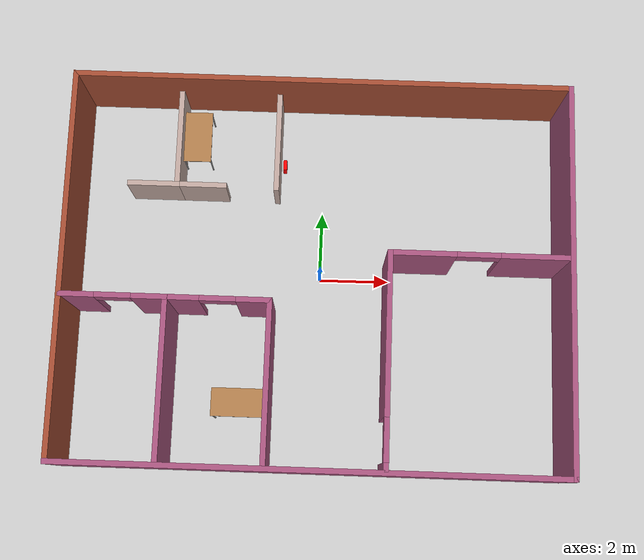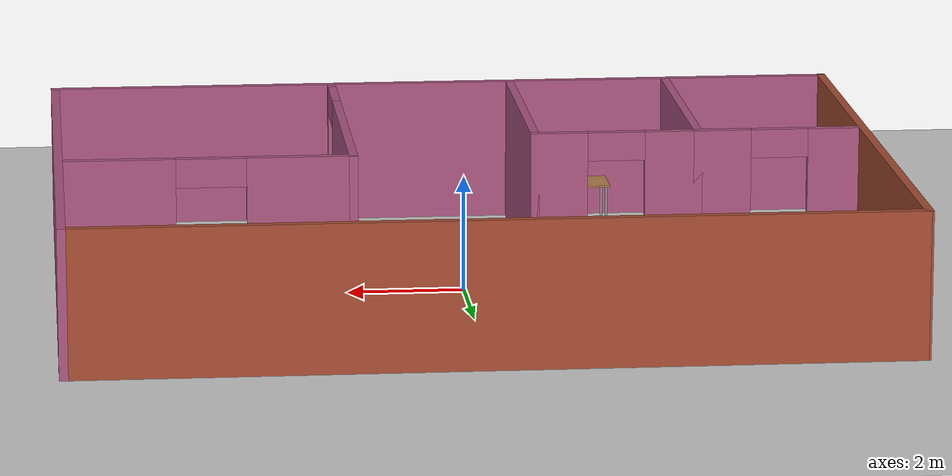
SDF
<sdf version="1.6">
 <world name="default">
  <include><uri>model://aruco_marker</uri><name>charging_dock0</name><pose>-1.15 3.4 0.0 0 -0 0</pose></include>
  <physics type="ode">
   <real_time_update_rate>1000.0</real_time_update_rate>
   <max_step_size>0.001</max_step_size>
   <real_time_factor>1</real_time_factor>
   <ode>
    <solver>
     <type>quick</type>
     <iters>150</iters>
     <precon_iters>0</precon_iters>
     <sor>1.400000</sor>
     <use_dynamic_moi_rescaling>1</use_dynamic_moi_rescaling>
    </solver>
    <constraints>
     <cfm>0.00001</cfm>
     <erp>0.2</erp>
     <contact_max_correcting_vel>2000.000000</contact_max_correcting_vel>
     <contact_surface_layer>0.01000</contact_surface_layer>
    </constraints>
   </ode>
  </physics>
  <plugin name="hello" filename="libhello.so"/>
  <light name="sun" type="directional">
   <pose>0 0 10 0 -0 0</pose>
   <diffuse>0.8 0.8 0.8 1</diffuse>
   <specular>0.2 0.2 0.2 1</specular>
   <attenuation>
    <range>1000</range>
    <constant>0.9</constant>
    <linear>0.01</linear>
    <quadratic>0.001</quadratic>
   </attenuation>
   <direction>-0.5 0.1 -0.9</direction>
  </light>
  <model name="ground_plane">
   <static>1</static>
   <link name="link">
    <collision name="collision">
     <geometry><plane><normal>0 0 1</normal><size>100 100</size></plane></geometry>
     <surface><friction><ode><mu>100</mu><mu2>50</mu2></ode></friction></surface>
    </collision>
    <visual name="visual">
     <cast_shadows>0</cast_shadows>
     <geometry><plane><normal>0 0 1</normal><size>100 100</size></plane></geometry>
     <material>
      <script><uri>file://media/materials/scripts/gazebo.material</uri><name>Gazebo/Grey</name></script>
     </material>
    </visual>
   </link>
  </model>
  <gravity>0 0 -9.8</gravity>
  <magnetic_field>6e-06 2.3e-05 -4.2e-05</magnetic_field>
  <atmosphere type="adiabatic"/>
  <scene><ambient>0.4 0.4 0.4 1</ambient><background>0.7 0.7 0.7 1</background><shadows>1</shadows></scene>
  <spherical_coordinates>
   <surface_model>EARTH_WGS84</surface_model>
   <latitude_deg>0</latitude_deg>
   <longitude_deg>0</longitude_deg>
   <elevation>0</elevation>
   <heading_deg>0</heading_deg>
  </spherical_coordinates>
  <model name="Building">
   <pose>-0.086047 -0.158335 0 0 -0 0</pose>
   <link name="Wall_12">
    <pose>-5.528 -0.925 0 0 -0 0</pose>
    <visual name="Wall_12_Visual_0">
     <pose>-1.00127 0 1.25 0 -0 0</pose>
     <geometry><box><size>0.997471 0.15 2.5</size></box></geometry>
     <material>
      <script><uri>file://media/materials/scripts/gazebo.material</uri><name>Gazebo/Grey</name></script>
      <ambient>0.666667 0.333333 0.498039 1</ambient>
     </material>
     <meta><layer>0</layer></meta>
    </visual>
    <collision name="Wall_12_Collision_0">
     <geometry><box><size>0.997471 0.15 2.5</size></box></geometry>
     <pose>-1.00127 0 1.25 0 -0 0</pose>
    </collision>
    <visual name="Wall_12_Visual_1">
     <pose>0.998735 0 1.25 0 -0 0</pose>
     <geometry><box><size>1.00253 0.15 2.5</size></box></geometry>
     <material>
      <script><uri>file://media/materials/scripts/gazebo.material</uri><name>Gazebo/Grey</name></script>
      <ambient>0.666667 0.333333 0.498039 1</ambient>
     </material>
     <meta><layer>0</layer></meta>
    </visual>
    <collision name="Wall_12_Collision_1">
     <geometry><box><size>1.00253 0.15 2.5</size></box></geometry>
     <pose>0.998735 0 1.25 0 -0 0</pose>
    </collision>
    <visual name="Wall_12_Visual_2">
     <pose>-0.002529 0 2.25 0 -0 0</pose>
     <geometry><box><size>1 0.15 0.5</size></box></geometry>
     <material>
      <script><uri>file://media/materials/scripts/gazebo.material</uri><name>Gazebo/Grey</name></script>
      <ambient>0.666667 0.333333 0.498039 1</ambient>
     </material>
     <meta><layer>0</layer></meta>
    </visual>
    <collision name="Wall_12_Collision_2">
     <geometry><box><size>1 0.15 0.5</size></box></geometry>
     <pose>-0.002529 0 2.25 0 -0 0</pose>
    </collision>
   </link>
   <link name="Wall_15">
    <collision name="Wall_15_Collision">
     <geometry><box><size>4.5 0.15 2.5</size></box></geometry>
     <pose>0 0 1.25 0 -0 0</pose>
    </collision>
    <visual name="Wall_15_Visual">
     <pose>0 0 1.25 0 -0 0</pose>
     <geometry><box><size>4.5 0.15 2.5</size></box></geometry>
     <material>
      <script><uri>file://media/materials/scripts/gazebo.material</uri><name>Gazebo/Grey</name></script>
      <ambient>0.666667 0.333333 0.498039 1</ambient>
     </material>
     <meta><layer>0</layer></meta>
    </visual>
    <pose>-4.103 -3.1 0 0 0 -1.5708</pose>
   </link>
   <link name="Wall_17">
    <pose>-2.678 -0.925 0 0 -0 0</pose>
    <visual name="Wall_17_Visual_0">
     <pose>-0.996642 0 1.25 0 -0 0</pose>
     <geometry><box><size>1.00672 0.15 2.5</size></box></geometry>
     <material>
      <script><uri>file://media/materials/scripts/gazebo.material</uri><name>Gazebo/Grey</name></script>
      <ambient>0.666667 0.333333 0.498039 1</ambient>
     </material>
     <meta><layer>0</layer></meta>
    </visual>
    <collision name="Wall_17_Collision_0">
     <geometry><box><size>1.00672 0.15 2.5</size></box></geometry>
     <pose>-0.996642 0 1.25 0 -0 0</pose>
    </collision>
    <visual name="Wall_17_Visual_1">
     <pose>1.00336 0 1.25 0 -0 0</pose>
     <geometry><box><size>0.993284 0.15 2.5</size></box></geometry>
     <material>
      <script><uri>file://media/materials/scripts/gazebo.material</uri><name>Gazebo/Grey</name></script>
      <ambient>0.666667 0.333333 0.498039 1</ambient>
     </material>
     <meta><layer>0</layer></meta>
    </visual>
    <collision name="Wall_17_Collision_1">
     <geometry><box><size>0.993284 0.15 2.5</size></box></geometry>
     <pose>1.00336 0 1.25 0 -0 0</pose>
    </collision>
    <visual name="Wall_17_Visual_2">
     <pose>0.006716 0 2.25 0 -0 0</pose>
     <geometry><box><size>1 0.15 0.5</size></box></geometry>
     <material>
      <script><uri>file://media/materials/scripts/gazebo.material</uri><name>Gazebo/Grey</name></script>
      <ambient>0.666667 0.333333 0.498039 1</ambient>
     </material>
     <meta><layer>0</layer></meta>
    </visual>
    <collision name="Wall_17_Collision_2">
     <geometry><box><size>1 0.15 0.5</size></box></geometry>
     <pose>0.006716 0 2.25 0 -0 0</pose>
    </collision>
   </link>
   <link name="Wall_19">
    <collision name="Wall_19_Collision">
     <geometry><box><size>4.5 0.15 2.5</size></box></geometry>
     <pose>0 0 1.25 0 -0 0</pose>
    </collision>
    <visual name="Wall_19_Visual">
     <pose>0 0 1.25 0 -0 0</pose>
     <geometry><box><size>4.5 0.15 2.5</size></box></geometry>
     <material>
      <script><uri>file://media/materials/scripts/gazebo.material</uri><name>Gazebo/Grey</name></script>
      <ambient>0.666667 0.333333 0.498039 1</ambient>
     </material>
     <meta><layer>0</layer></meta>
    </visual>
    <pose>-1.253 -3.1 0 0 0 -1.5708</pose>
   </link>
   <link name="Wall_21">
    <collision name="Wall_21_Collision">
     <geometry><box><size>3 0.15 1.5</size></box></geometry>
     <pose>0 0 0.75 0 -0 0</pose>
    </collision>
    <visual name="Wall_21_Visual">
     <pose>0 0 0.75 0 -0 0</pose>
     <geometry><box><size>3 0.15 1.5</size></box></geometry>
     <material>
      <script><uri>file://media/materials/scripts/gazebo.material</uri><name>Gazebo/Grey</name></script>
      <ambient>0.760784 0.662745 0.627451 1</ambient>
     </material>
     <meta><layer>0</layer></meta>
    </visual>
    <pose>-4.103 3.972 0 0 0 -1.5708</pose>
   </link>
   <link name="Wall_23">
    <collision name="Wall_23_Collision">
     <geometry><box><size>3 0.15 1.5</size></box></geometry>
     <pose>0 0 0.75 0 -0 0</pose>
    </collision>
    <visual name="Wall_23_Visual">
     <pose>0 0 0.75 0 -0 0</pose>
     <geometry><box><size>3 0.15 1.5</size></box></geometry>
     <material>
      <script><uri>file://media/materials/scripts/gazebo.material</uri><name>Gazebo/Grey</name></script>
      <ambient>0.760784 0.662745 0.627451 1</ambient>
     </material>
     <meta><layer>0</layer></meta>
    </visual>
    <pose>-1.253 3.952 0 0 0 -1.5708</pose>
   </link>
   <link name="Wall_25">
    <collision name="Wall_25_Collision">
     <geometry><box><size>1.5 0.15 1.5</size></box></geometry>
     <pose>0 0 0.75 0 -0 0</pose>
    </collision>
    <visual name="Wall_25_Visual">
     <pose>0 0 0.75 0 -0 0</pose>
     <geometry><box><size>1.5 0.15 1.5</size></box></geometry>
     <material>
      <script><uri>file://media/materials/scripts/gazebo.material</uri><name>Gazebo/Grey</name></script>
      <ambient>0.760784 0.662745 0.627451 1</ambient>
     </material>
     <meta><layer>0</layer></meta>
    </visual>
    <pose>-4.778 2.547 0 0 -0 3.14159</pose>
   </link>
   <link name="Wall_27">
    <collision name="Wall_27_Collision">
     <geometry><box><size>1.5 0.15 1.5</size></box></geometry>
     <pose>0 0 0.75 0 -0 0</pose>
    </collision>
    <visual name="Wall_27_Visual">
     <pose>0 0 0.75 0 -0 0</pose>
     <geometry><box><size>1.5 0.15 1.5</size></box></geometry>
     <material>
      <script><uri>file://media/materials/scripts/gazebo.material</uri><name>Gazebo/Grey</name></script>
      <ambient>0.760784 0.662745 0.627451 1</ambient>
     </material>
     <meta><layer>0</layer></meta>
    </visual>
    <pose>-3.428 2.547 0 0 -0 0</pose>
   </link>
   <link name="Wall_29">
    <pose>2 -2.399 0 0 -0 1.5708</pose>
    <visual name="Wall_29_Visual_0">
     <pose>-2.87898 0 1.25 0 -0 0</pose>
     <geometry><box><size>0.242034 0.15 2.5</size></box></geometry>
     <material>
      <script><uri>file://media/materials/scripts/gazebo.material</uri><name>Gazebo/Grey</name></script>
      <ambient>0.666667 0.333333 0.498039 1</ambient>
     </material>
     <meta><layer>0</layer></meta>
    </visual>
    <collision name="Wall_29_Collision_0">
     <geometry><box><size>0.242034 0.15 2.5</size></box></geometry>
     <pose>-2.87898 0 1.25 0 -0 0</pose>
    </collision>
    <visual name="Wall_29_Visual_1">
     <pose>0.721017 0 1.25 0 -0 0</pose>
     <geometry><box><size>4.55797 0.15 2.5</size></box></geometry>
     <material>
      <script><uri>file://media/materials/scripts/gazebo.material</uri><name>Gazebo/Grey</name></script>
      <ambient>0.666667 0.333333 0.498039 1</ambient>
     </material>
     <meta><layer>0</layer></meta>
    </visual>
    <collision name="Wall_29_Collision_1">
     <geometry><box><size>4.55797 0.15 2.5</size></box></geometry>
     <pose>0.721017 0 1.25 0 -0 0</pose>
    </collision>
    <visual name="Wall_29_Visual_2">
     <pose>-2.15797 0 2.25 0 -0 0</pose>
     <geometry><box><size>1.2 0.15 0.5</size></box></geometry>
     <material>
      <script><uri>file://media/materials/scripts/gazebo.material</uri><name>Gazebo/Grey</name></script>
      <ambient>0.666667 0.333333 0.498039 1</ambient>
     </material>
     <meta><layer>0</layer></meta>
    </visual>
    <collision name="Wall_29_Collision_2">
     <geometry><box><size>1.2 0.15 0.5</size></box></geometry>
     <pose>-2.15797 0 2.25 0 -0 0</pose>
    </collision>
   </link>
   <link name="Wall_3">
    <collision name="Wall_3_Collision">
     <geometry><box><size>14.15 0.15 2.5</size></box></geometry>
     <pose>0 0 1.25 0 -0 0</pose>
    </collision>
    <visual name="Wall_3_Visual">
     <pose>0 0 1.25 0 -0 0</pose>
     <geometry><box><size>14.15 0.15 2.5</size></box></geometry>
     <material>
      <script><uri>file://media/materials/scripts/gazebo.material</uri><name>Gazebo/Grey</name></script>
      <ambient>0.666667 0.333333 0.498039 1</ambient>
     </material>
     <meta><layer>0</layer></meta>
    </visual>
    <pose>0 -5.425 0 0 -0 0</pose>
   </link>
   <link name="Wall_31">
    <pose>4.425 0.526 0 0 -0 0</pose>
    <visual name="Wall_31_Visual_0">
     <pose>-1.55299 0 1.25 0 -0 0</pose>
     <geometry><box><size>1.89402 0.15 2.5</size></box></geometry>
     <material>
      <script><uri>file://media/materials/scripts/gazebo.material</uri><name>Gazebo/Grey</name></script>
      <ambient>0.666667 0.333333 0.498039 1</ambient>
     </material>
     <meta><layer>0</layer></meta>
    </visual>
    <collision name="Wall_31_Collision_0">
     <geometry><box><size>1.89402 0.15 2.5</size></box></geometry>
     <pose>-1.55299 0 1.25 0 -0 0</pose>
    </collision>
    <visual name="Wall_31_Visual_1">
     <pose>1.54701 0 1.25 0 -0 0</pose>
     <geometry><box><size>1.90598 0.15 2.5</size></box></geometry>
     <material>
      <script><uri>file://media/materials/scripts/gazebo.material</uri><name>Gazebo/Grey</name></script>
      <ambient>0.666667 0.333333 0.498039 1</ambient>
     </material>
     <meta><layer>0</layer></meta>
    </visual>
    <collision name="Wall_31_Collision_1">
     <geometry><box><size>1.90598 0.15 2.5</size></box></geometry>
     <pose>1.54701 0 1.25 0 -0 0</pose>
    </collision>
    <visual name="Wall_31_Visual_2">
     <pose>-0.005978 0 2.25 0 -0 0</pose>
     <geometry><box><size>1.2 0.15 0.5</size></box></geometry>
     <material>
      <script><uri>file://media/materials/scripts/gazebo.material</uri><name>Gazebo/Grey</name></script>
      <ambient>0.666667 0.333333 0.498039 1</ambient>
     </material>
     <meta><layer>0</layer></meta>
    </visual>
    <collision name="Wall_31_Collision_2">
     <geometry><box><size>1.2 0.15 0.5</size></box></geometry>
     <pose>-0.005978 0 2.25 0 -0 0</pose>
    </collision>
   </link>
   <link name="Wall_5">
    <collision name="Wall_5_Collision">
     <geometry><box><size>11 0.15 2.5</size></box></geometry>
     <pose>0 0 1.25 0 -0 0</pose>
    </collision>
    <visual name="Wall_5_Visual">
     <pose>0 0 1.25 0 -0 0</pose>
     <geometry><box><size>11 0.15 2.5</size></box></geometry>
     <material>
      <script><uri>file://media/materials/scripts/gazebo.material</uri><name>Gazebo/Bricks</name></script>
      <ambient>0.666667 0.333333 0.498039 1</ambient>
     </material>
     <meta><layer>0</layer></meta>
    </visual>
    <pose>-7 0 0 0 -0 1.5708</pose>
   </link>
   <link name="Wall_7">
    <collision name="Wall_7_Collision">
     <geometry><box><size>11 0.15 2.5</size></box></geometry>
     <pose>0 0 1.25 0 -0 0</pose>
    </collision>
    <visual name="Wall_7_Visual">
     <pose>0 0 1.25 0 -0 0</pose>
     <geometry><box><size>11 0.15 2.5</size></box></geometry>
     <material>
      <script><uri>file://media/materials/scripts/gazebo.material</uri><name>Gazebo/Grey</name></script>
      <ambient>0.666667 0.333333 0.498039 1</ambient>
     </material>
     <meta><layer>0</layer></meta>
    </visual>
    <pose>7 0 0 0 -0 1.5708</pose>
   </link>
   <link name="Wall_9">
    <collision name="Wall_9_Collision">
     <geometry><box><size>14 0.15 2.5</size></box></geometry>
     <pose>0 0 1.25 0 -0 0</pose>
    </collision>
    <visual name="Wall_9_Visual">
     <pose>0 0 1.25 0 -0 0</pose>
     <geometry><box><size>14 0.15 2.5</size></box></geometry>
     <material>
      <script><uri>file://media/materials/scripts/gazebo.material</uri><name>Gazebo/Bricks</name></script>
      <ambient>0.666667 0.333333 0.498039 1</ambient>
     </material>
     <meta><layer>0</layer></meta>
    </visual>
    <pose>-0.075 5.425 0 0 -0 0</pose>
   </link>
   <static>1</static>
  </model>
  <model name="table">
   <static>1</static>
   <link name="link">
    <collision name="surface">
     <pose>0 0 1 0 -0 0</pose>
     <geometry><box><size>1.5 0.8 0.03</size></box></geometry>
     <surface><friction><ode><mu>0.6</mu><mu2>0.6</mu2></ode></friction></surface>
    </collision>
    <visual name="visual1">
     <pose>0 0 1 0 -0 0</pose>
     <geometry><box><size>1.5 0.8 0.03</size></box></geometry>
     <material>
      <script><uri>file://media/materials/scripts/gazebo.material</uri><name>Gazebo/Wood</name></script>
     </material>
    </visual>
    <collision name="front_left_leg">
     <pose>0.68 0.38 0.5 0 -0 0</pose>
     <geometry><cylinder><radius>0.02</radius><length>1</length></cylinder></geometry>
    </collision>
    <visual name="front_left_leg">
     <pose>0.68 0.38 0.5 0 -0 0</pose>
     <geometry><cylinder><radius>0.02</radius><length>1</length></cylinder></geometry>
     <material>
      <script><uri>file://media/materials/scripts/gazebo.material</uri><name>Gazebo/Grey</name></script>
     </material>
    </visual>
    <collision name="front_right_leg">
     <pose>0.68 -0.38 0.5 0 -0 0</pose>
     <geometry><cylinder><radius>0.02</radius><length>1</length></cylinder></geometry>
    </collision>
    <visual name="front_right_leg">
     <pose>0.68 -0.38 0.5 0 -0 0</pose>
     <geometry><cylinder><radius>0.02</radius><length>1</length></cylinder></geometry>
     <material>
      <script><uri>file://media/materials/scripts/gazebo.material</uri><name>Gazebo/Grey</name></script>
     </material>
    </visual>
    <collision name="back_right_leg">
     <pose>-0.68 -0.38 0.5 0 -0 0</pose>
     <geometry><cylinder><radius>0.02</radius><length>1</length></cylinder></geometry>
    </collision>
    <visual name="back_right_leg">
     <pose>-0.68 -0.38 0.5 0 -0 0</pose>
     <geometry><cylinder><radius>0.02</radius><length>1</length></cylinder></geometry>
     <material>
      <script><uri>file://media/materials/scripts/gazebo.material</uri><name>Gazebo/Grey</name></script>
     </material>
    </visual>
    <collision name="back_left_leg">
     <pose>-0.68 0.38 0.5 0 -0 0</pose>
     <geometry><cylinder><radius>0.02</radius><length>1</length></cylinder></geometry>
    </collision>
    <visual name="back_left_leg">
     <pose>-0.68 0.38 0.5 0 -0 0</pose>
     <geometry><cylinder><radius>0.02</radius><length>1</length></cylinder></geometry>
     <material>
      <script><uri>file://media/materials/scripts/gazebo.material</uri><name>Gazebo/Grey</name></script>
     </material>
    </visual>
   </link>
   <pose>-3.71046 3.9761 0 0 -0 1.57905</pose>
  </model>
  <model name="table_0">
   <static>1</static>
   <link name="link">
    <collision name="surface">
     <pose>0 0 1 0 -0 0</pose>
     <geometry><box><size>1.5 0.8 0.03</size></box></geometry>
     <surface><friction><ode><mu>0.6</mu><mu2>0.6</mu2></ode></friction></surface>
    </collision>
    <visual name="visual1">
     <pose>0 0 1 0 -0 0</pose>
     <geometry><box><size>1.5 0.8 0.03</size></box></geometry>
     <material>
      <script><uri>file://media/materials/scripts/gazebo.material</uri><name>Gazebo/Wood</name></script>
     </material>
    </visual>
    <collision name="front_left_leg">
     <pose>0.68 0.38 0.5 0 -0 0</pose>
     <geometry><cylinder><radius>0.02</radius><length>1</length></cylinder></geometry>
    </collision>
    <visual name="front_left_leg">
     <pose>0.68 0.38 0.5 0 -0 0</pose>
     <geometry><cylinder><radius>0.02</radius><length>1</length></cylinder></geometry>
     <material>
      <script><uri>file://media/materials/scripts/gazebo.material</uri><name>Gazebo/Grey</name></script>
     </material>
    </visual>
    <collision name="front_right_leg">
     <pose>0.68 -0.38 0.5 0 -0 0</pose>
     <geometry><cylinder><radius>0.02</radius><length>1</length></cylinder></geometry>
    </collision>
    <visual name="front_right_leg">
     <pose>0.68 -0.38 0.5 0 -0 0</pose>
     <geometry><cylinder><radius>0.02</radius><length>1</length></cylinder></geometry>
     <material>
      <script><uri>file://media/materials/scripts/gazebo.material</uri><name>Gazebo/Grey</name></script>
     </material>
    </visual>
    <collision name="back_right_leg">
     <pose>-0.68 -0.38 0.5 0 -0 0</pose>
     <geometry><cylinder><radius>0.02</radius><length>1</length></cylinder></geometry>
    </collision>
    <visual name="back_right_leg">
     <pose>-0.68 -0.38 0.5 0 -0 0</pose>
     <geometry><cylinder><radius>0.02</radius><length>1</length></cylinder></geometry>
     <material>
      <script><uri>file://media/materials/scripts/gazebo.material</uri><name>Gazebo/Grey</name></script>
     </material>
    </visual>
    <collision name="back_left_leg">
     <pose>-0.68 0.38 0.5 0 -0 0</pose>
     <geometry><cylinder><radius>0.02</radius><length>1</length></cylinder></geometry>
    </collision>
    <visual name="back_left_leg">
     <pose>-0.68 0.38 0.5 0 -0 0</pose>
     <geometry><cylinder><radius>0.02</radius><length>1</length></cylinder></geometry>
     <material>
      <script><uri>file://media/materials/scripts/gazebo.material</uri><name>Gazebo/Grey</name></script>
     </material>
    </visual>
   </link>
   <pose>-2.18434 -3.75792 0 0 -0 0</pose>
  </model>
 </world>
</sdf>

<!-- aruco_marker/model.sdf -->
<sdf version='1.7'>
  <model name='aruco_marker'>
    <link name='link'>
      <inertial>
        <pose>0 0 0 0 -0 0</pose>
        <mass>0.001</mass>
        <inertia>
          <ixx>3.75e-06</ixx>
          <ixy>0</ixy>
          <ixz>0</ixz>
          <iyy>1.88e-06</iyy>
          <iyz>0</iyz>
          <izz>1.88e-06</izz>
        </inertia>
      </inertial>
      <self_collide>0</self_collide>
      <enable_wind>0</enable_wind>
      <kinematic>0</kinematic>
      <pose>0 0 0 0 -0 0</pose>
      <gravity>1</gravity>
      <visual name='front_visual'>
        <pose>0.052 0 0.33 0 -0 0</pose>
        <geometry>
          <box>
            <size>0.0001 0.2 0.2</size>
          </box>
        </geometry>
        <material>
          <script>
            <uri>model://aruco_marker/materials/scripts</uri>
            <uri>model://aruco_marker/materials/textures</uri>
            <name>Marker</name>
          </script>
        </material>
        <transparency>0</transparency>
        <cast_shadows>1</cast_shadows>
      </visual>
      <visual name='rear_visual'>
        <pose>-5e-05 0 0.2 0 -0 0</pose>
        <geometry>
          <box>
            <size>0.1 0.3 0.4</size>
          </box>
        </geometry>
        <material>
          <script>
            <name>Gazebo/Grey</name>
            <uri>file://media/materials/scripts/gazebo.material</uri>
          </script>
          <shader type='pixel'>
            <normal_map>__default__</normal_map>
          </shader>
          <ambient>1 0 0 1</ambient>
          <diffuse>1 0 0 1</diffuse>
          <specular>0.1 0.1 0.1 1</specular>
          <emissive>0 0 0 1</emissive>
        </material>
        <transparency>0</transparency>
        <cast_shadows>1</cast_shadows>
      </visual>
      <collision name='collision'>
        <laser_retro>0</laser_retro>
        <max_contacts>10</max_contacts>
        <pose>0 0 0.2 0 -0 0</pose>
        <geometry>
          <box>
            <size>0.1 0.3 0.4</size>
          </box>
        </geometry>
        <surface>
          <friction>
            <ode>
              <mu>1</mu>
              <mu2>1</mu2>
              <fdir1>0 0 0</fdir1>
              <slip1>0</slip1>
              <slip2>0</slip2>
            </ode>
            <torsional>
              <coefficient>1</coefficient>
              <patch_radius>0</patch_radius>
              <surface_radius>0</surface_radius>
              <use_patch_radius>1</use_patch_radius>
              <ode>
                <slip>0</slip>
              </ode>
            </torsional>
          </friction>
          <bounce>
            <restitution_coefficient>0</restitution_coefficient>
            <threshold>1e+06</threshold>
          </bounce>
          <contact>
            <collide_without_contact>0</collide_without_contact>
            <collide_without_contact_bitmask>1</collide_without_contact_bitmask>
            <collide_bitmask>1</collide_bitmask>
            <ode>
              <soft_cfm>0</soft_cfm>
              <soft_erp>0.2</soft_erp>
              <kp>1e+13</kp>
              <kd>1</kd>
              <max_vel>0.01</max_vel>
              <min_depth>0</min_depth>
            </ode>
            <bullet>
              <split_impulse>1</split_impulse>
              <split_impulse_penetration_threshold>-0.01</split_impulse_penetration_threshold>
              <soft_cfm>0</soft_cfm>
              <soft_erp>0.2</soft_erp>
              <kp>1e+13</kp>
              <kd>1</kd>
            </bullet>
          </contact>
        </surface>
      </collision>
    </link>
    <static>1</static>
    <allow_auto_disable>1</allow_auto_disable>
  </model>
</sdf>
